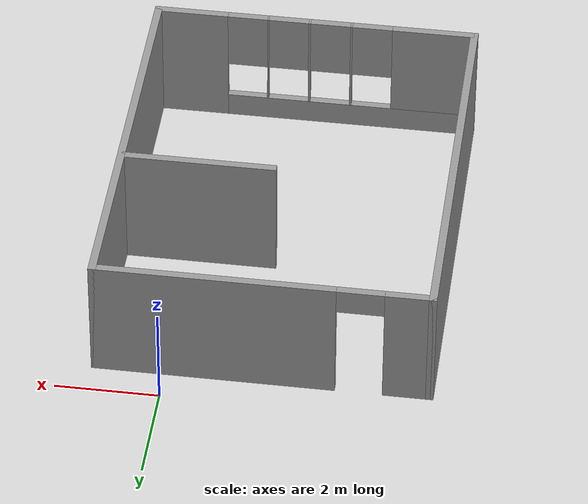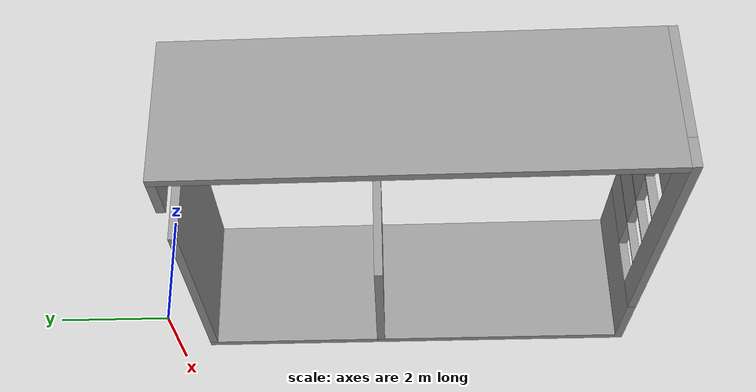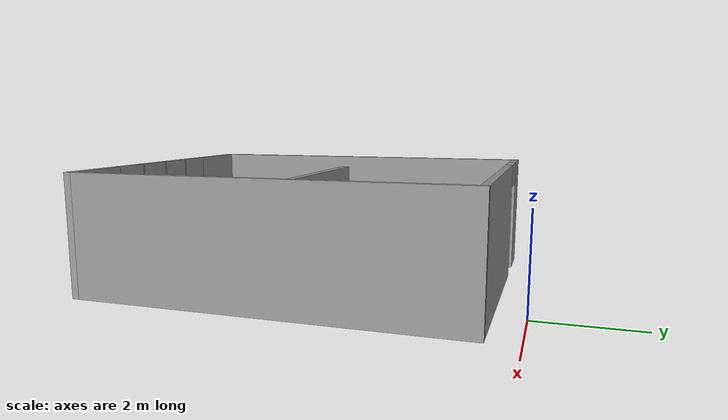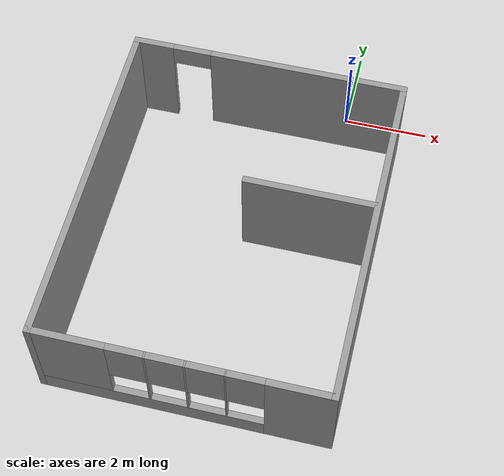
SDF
<?xml version='1.0'?>
<sdf version='1.6'>
  <model name='lab_simple'>
    <pose frame=''>-1.855 -4.595 0 0 -0 0</pose>
    <link name='Wall_0'>
      <pose frame=''>-0 -3.925 0 0 -0 3.14159</pose>
      <visual name='Wall_0_Visual_0'>
        <pose frame=''>-2.5075 0 1.25 0 -0 0</pose>
        <geometry>
          <box>
            <size>1.485 0.15 2.5</size>
          </box>
        </geometry>
        <material>
          <script>
            <uri>file://media/materials/scripts/gazebo.material</uri>
            <name>Gazebo/Grey</name>
          </script>
          <ambient>1 1 1 1</ambient>
        </material>
        <meta>
          <layer>0</layer>
        </meta>
      </visual>
      <collision name='Wall_0_Collision_0'>
        <geometry>
          <box>
            <size>1.485 0.15 2.5</size>
          </box>
        </geometry>
        <pose frame=''>-2.5075 0 1.25 0 -0 0</pose>
      </collision>
      <visual name='Wall_0_Visual_1'>
        <pose frame=''>0.7425 0 0.25 0 -0 0</pose>
        <geometry>
          <box>
            <size>5.015 0.15 0.5</size>
          </box>
        </geometry>
        <material>
          <script>
            <uri>file://media/materials/scripts/gazebo.material</uri>
            <name>Gazebo/Grey</name>
          </script>
          <ambient>1 1 1 1</ambient>
        </material>
        <meta>
          <layer>0</layer>
        </meta>
      </visual>
      <collision name='Wall_0_Collision_1'>
        <geometry>
          <box>
            <size>5.015 0.15 0.5</size>
          </box>
        </geometry>
        <pose frame=''>0.7425 0 0.25 0 -0 0</pose>
      </collision>
      <visual name='Wall_0_Visual_2'>
        <pose frame=''>-0.95 0 1.5 0 -0 0</pose>
        <geometry>
          <box>
            <size>0.03 0.15 2</size>
          </box>
        </geometry>
        <material>
          <script>
            <uri>file://media/materials/scripts/gazebo.material</uri>
            <name>Gazebo/Grey</name>
          </script>
          <ambient>1 1 1 1</ambient>
        </material>
        <meta>
          <layer>0</layer>
        </meta>
      </visual>
      <collision name='Wall_0_Collision_2'>
        <geometry>
          <box>
            <size>0.03 0.15 2</size>
          </box>
        </geometry>
        <pose frame=''>-0.95 0 1.5 0 -0 0</pose>
      </collision>
      <visual name='Wall_0_Visual_3'>
        <pose frame=''>-0.115 0 1.5 0 -0 0</pose>
        <geometry>
          <box>
            <size>0.04 0.15 2</size>
          </box>
        </geometry>
        <material>
          <script>
            <uri>file://media/materials/scripts/gazebo.material</uri>
            <name>Gazebo/Grey</name>
          </script>
          <ambient>1 1 1 1</ambient>
        </material>
        <meta>
          <layer>0</layer>
        </meta>
      </visual>
      <collision name='Wall_0_Collision_3'>
        <geometry>
          <box>
            <size>0.04 0.15 2</size>
          </box>
        </geometry>
        <pose frame=''>-0.115 0 1.5 0 -0 0</pose>
      </collision>
      <visual name='Wall_0_Visual_4'>
        <pose frame=''>0.725 0 1.5 0 -0 0</pose>
        <geometry>
          <box>
            <size>0.04 0.15 2</size>
          </box>
        </geometry>
        <material>
          <script>
            <uri>file://media/materials/scripts/gazebo.material</uri>
            <name>Gazebo/Grey</name>
          </script>
          <ambient>1 1 1 1</ambient>
        </material>
        <meta>
          <layer>0</layer>
        </meta>
      </visual>
      <collision name='Wall_0_Collision_4'>
        <geometry>
          <box>
            <size>0.04 0.15 2</size>
          </box>
        </geometry>
        <pose frame=''>0.725 0 1.5 0 -0 0</pose>
      </collision>
      <visual name='Wall_0_Visual_5'>
        <pose frame=''>2.3975 0 1.5 0 -0 0</pose>
        <geometry>
          <box>
            <size>1.705 0.15 2</size>
          </box>
        </geometry>
        <material>
          <script>
            <uri>file://media/materials/scripts/gazebo.material</uri>
            <name>Gazebo/Grey</name>
          </script>
          <ambient>1 1 1 1</ambient>
        </material>
        <meta>
          <layer>0</layer>
        </meta>
      </visual>
      <collision name='Wall_0_Collision_5'>
        <geometry>
          <box>
            <size>1.705 0.15 2</size>
          </box>
        </geometry>
        <pose frame=''>2.3975 0 1.5 0 -0 0</pose>
      </collision>
      <visual name='Wall_0_Visual_6'>
        <pose frame=''>-1.365 0 1.9 0 -0 0</pose>
        <geometry>
          <box>
            <size>0.8 0.15 1.2</size>
          </box>
        </geometry>
        <material>
          <script>
            <uri>file://media/materials/scripts/gazebo.material</uri>
            <name>Gazebo/Grey</name>
          </script>
          <ambient>1 1 1 1</ambient>
        </material>
        <meta>
          <layer>0</layer>
        </meta>
      </visual>
      <collision name='Wall_0_Collision_6'>
        <geometry>
          <box>
            <size>0.8 0.15 1.2</size>
          </box>
        </geometry>
        <pose frame=''>-1.365 0 1.9 0 -0 0</pose>
      </collision>
      <visual name='Wall_0_Visual_7'>
        <pose frame=''>-0.535 0 1.9 0 -0 0</pose>
        <geometry>
          <box>
            <size>0.8 0.15 1.2</size>
          </box>
        </geometry>
        <material>
          <script>
            <uri>file://media/materials/scripts/gazebo.material</uri>
            <name>Gazebo/Grey</name>
          </script>
          <ambient>1 1 1 1</ambient>
        </material>
        <meta>
          <layer>0</layer>
        </meta>
      </visual>
      <collision name='Wall_0_Collision_7'>
        <geometry>
          <box>
            <size>0.8 0.15 1.2</size>
          </box>
        </geometry>
        <pose frame=''>-0.535 0 1.9 0 -0 0</pose>
      </collision>
      <visual name='Wall_0_Visual_8'>
        <pose frame=''>0.305 0 1.9 0 -0 0</pose>
        <geometry>
          <box>
            <size>0.8 0.15 1.2</size>
          </box>
        </geometry>
        <material>
          <script>
            <uri>file://media/materials/scripts/gazebo.material</uri>
            <name>Gazebo/Grey</name>
          </script>
          <ambient>1 1 1 1</ambient>
        </material>
        <meta>
          <layer>0</layer>
        </meta>
      </visual>
      <collision name='Wall_0_Collision_8'>
        <geometry>
          <box>
            <size>0.8 0.15 1.2</size>
          </box>
        </geometry>
        <pose frame=''>0.305 0 1.9 0 -0 0</pose>
      </collision>
      <visual name='Wall_0_Visual_9'>
        <pose frame=''>1.145 0 1.9 0 -0 0</pose>
        <geometry>
          <box>
            <size>0.8 0.15 1.2</size>
          </box>
        </geometry>
        <material>
          <script>
            <uri>file://media/materials/scripts/gazebo.material</uri>
            <name>Gazebo/Grey</name>
          </script>
          <ambient>1 1 1 1</ambient>
        </material>
        <meta>
          <layer>0</layer>
        </meta>
      </visual>
      <collision name='Wall_0_Collision_9'>
        <geometry>
          <box>
            <size>0.8 0.15 1.2</size>
          </box>
        </geometry>
        <pose frame=''>1.145 0 1.9 0 -0 0</pose>
      </collision>
    </link>
    <link name='Wall_1'>
      <collision name='Wall_1_Collision'>
        <geometry>
          <box>
            <size>8 0.15 2.5</size>
          </box>
        </geometry>
        <pose frame=''>0 0 1.25 0 -0 0</pose>
      </collision>
      <visual name='Wall_1_Visual'>
        <pose frame=''>0 0 1.25 0 -0 0</pose>
        <geometry>
          <box>
            <size>8 0.15 2.5</size>
          </box>
        </geometry>
        <material>
          <script>
            <uri>file://media/materials/scripts/gazebo.material</uri>
            <name>Gazebo/Grey</name>
          </script>
          <ambient>1 1 1 1</ambient>
        </material>
        <meta>
          <layer>0</layer>
        </meta>
      </visual>
      <pose frame=''>-3.175 0 0 0 -0 1.5708</pose>
    </link>
    <link name='Wall_2'>
      <pose frame=''>-0 3.925 0 0 -0 0</pose>
      <visual name='Wall_2_Visual_0'>
        <pose frame=''>-2.7675 0 1.25 0 -0 0</pose>
        <geometry>
          <box>
            <size>0.965 0.15 2.5</size>
          </box>
        </geometry>
        <material>
          <script>
            <uri>file://media/materials/scripts/gazebo.material</uri>
            <name>Gazebo/Grey</name>
          </script>
          <ambient>1 1 1 1</ambient>
        </material>
        <meta>
          <layer>0</layer>
        </meta>
      </visual>
      <collision name='Wall_2_Collision_0'>
        <geometry>
          <box>
            <size>0.965 0.15 2.5</size>
          </box>
        </geometry>
        <pose frame=''>-2.7675 0 1.25 0 -0 0</pose>
      </collision>
      <visual name='Wall_2_Visual_1'>
        <pose frame=''>0.9325 0 1.25 0 -0 0</pose>
        <geometry>
          <box>
            <size>4.635 0.15 2.5</size>
          </box>
        </geometry>
        <material>
          <script>
            <uri>file://media/materials/scripts/gazebo.material</uri>
            <name>Gazebo/Grey</name>
          </script>
          <ambient>1 1 1 1</ambient>
        </material>
        <meta>
          <layer>0</layer>
        </meta>
      </visual>
      <collision name='Wall_2_Collision_1'>
        <geometry>
          <box>
            <size>4.635 0.15 2.5</size>
          </box>
        </geometry>
        <pose frame=''>0.9325 0 1.25 0 -0 0</pose>
      </collision>
      <visual name='Wall_2_Visual_2'>
        <pose frame=''>-1.835 0 2.25 0 -0 0</pose>
        <geometry>
          <box>
            <size>0.9 0.15 0.5</size>
          </box>
        </geometry>
        <material>
          <script>
            <uri>file://media/materials/scripts/gazebo.material</uri>
            <name>Gazebo/Grey</name>
          </script>
          <ambient>1 1 1 1</ambient>
        </material>
        <meta>
          <layer>0</layer>
        </meta>
      </visual>
      <collision name='Wall_2_Collision_2'>
        <geometry>
          <box>
            <size>0.9 0.15 0.5</size>
          </box>
        </geometry>
        <pose frame=''>-1.835 0 2.25 0 -0 0</pose>
      </collision>
    </link>
    <link name='Wall_3'>
      <collision name='Wall_3_Collision'>
        <geometry>
          <box>
            <size>8 0.15 2.5</size>
          </box>
        </geometry>
        <pose frame=''>0 0 1.25 0 -0 0</pose>
      </collision>
      <visual name='Wall_3_Visual'>
        <pose frame=''>0 0 1.25 0 -0 0</pose>
        <geometry>
          <box>
            <size>8 0.15 2.5</size>
          </box>
        </geometry>
        <material>
          <script>
            <uri>file://media/materials/scripts/gazebo.material</uri>
            <name>Gazebo/Grey</name>
          </script>
          <ambient>1 1 1 1</ambient>
        </material>
        <meta>
          <layer>0</layer>
        </meta>
      </visual>
      <pose frame=''>3.175 0 0 0 -0 -1.5708</pose>
    </link>
    <link name='Wall_5'>
      <collision name='Wall_5_Collision'>
        <geometry>
          <box>
            <size>3 0.15 2.5</size>
          </box>
        </geometry>
        <pose frame=''>0 0 1.25 0 -0 0</pose>
      </collision>
      <visual name='Wall_5_Visual'>
        <pose frame=''>0 0 1.25 0 -0 0</pose>
        <geometry>
          <box>
            <size>3 0.15 2.5</size>
          </box>
        </geometry>
        <material>
          <script>
            <uri>file://media/materials/scripts/gazebo.material</uri>
            <name>Gazebo/Grey</name>
          </script>
          <ambient>1 1 1 1</ambient>
        </material>
        <meta>
          <layer>0</layer>
        </meta>
      </visual>
      <pose frame=''>1.67 0.655 0 0 -0 0</pose>
    </link>
    <static>1</static>
  </model>
</sdf>
